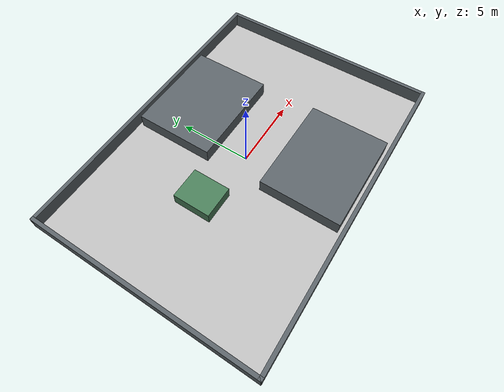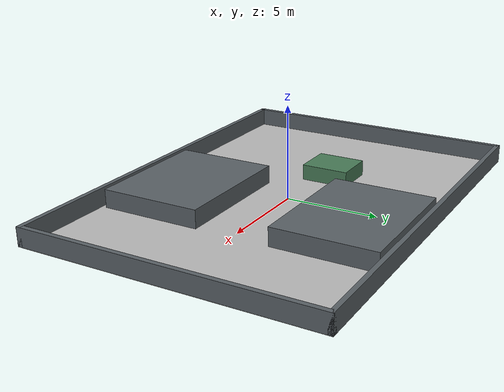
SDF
<?xml version="1.0"?>
<sdf version="1.6">
  <world name="default">
    <gravity>0 0 -9.8</gravity>
    <physics name="default_physics" type="ode">
      <max_step_size>0.002</max_step_size>
      <real_time_factor>1</real_time_factor>
      <real_time_update_rate>500</real_time_update_rate>
    </physics>
    <include><uri>model://sun</uri></include>
    <model name="ground_plane">
      <static>true</static>
      <link name="link">
        <collision name="collision">
          <geometry><box><size>22.000 16.000 0.02</size></box></geometry>
        </collision>
        <visual name="visual">
          <geometry><box><size>22.000 16.000 0.02</size></box></geometry>
          <material>
            <ambient>0.72 0.72 0.72 1</ambient>
            <diffuse>0.72 0.72 0.72 1</diffuse>
          </material>
        </visual>
      </link>
    </model>

    <model name="wall_north">
      <static>true</static>
      <pose>0.000 7.875 0.500 0 0 0</pose>
      <link name="link">
        <collision name="collision">
          <geometry><box><size>22.000 0.250 1.000</size></box></geometry>
        </collision>
        <visual name="visual">
          <geometry><box><size>22.000 0.250 1.000</size></box></geometry>
          <material>
            <ambient>0.35 0.38 0.40 1</ambient>
            <diffuse>0.35 0.38 0.40 1</diffuse>
          </material>
        </visual>
      </link>
    </model>

    <model name="wall_south">
      <static>true</static>
      <pose>0.000 -7.875 0.500 0 0 0</pose>
      <link name="link">
        <collision name="collision">
          <geometry><box><size>22.000 0.250 1.000</size></box></geometry>
        </collision>
        <visual name="visual">
          <geometry><box><size>22.000 0.250 1.000</size></box></geometry>
          <material>
            <ambient>0.35 0.38 0.40 1</ambient>
            <diffuse>0.35 0.38 0.40 1</diffuse>
          </material>
        </visual>
      </link>
    </model>

    <model name="wall_west">
      <static>true</static>
      <pose>-10.875 0.000 0.500 0 0 0</pose>
      <link name="link">
        <collision name="collision">
          <geometry><box><size>0.250 16.000 1.000</size></box></geometry>
        </collision>
        <visual name="visual">
          <geometry><box><size>0.250 16.000 1.000</size></box></geometry>
          <material>
            <ambient>0.35 0.38 0.40 1</ambient>
            <diffuse>0.35 0.38 0.40 1</diffuse>
          </material>
        </visual>
      </link>
    </model>

    <model name="wall_east">
      <static>true</static>
      <pose>10.875 0.000 0.500 0 0 0</pose>
      <link name="link">
        <collision name="collision">
          <geometry><box><size>0.250 16.000 1.000</size></box></geometry>
        </collision>
        <visual name="visual">
          <geometry><box><size>0.250 16.000 1.000</size></box></geometry>
          <material>
            <ambient>0.35 0.38 0.40 1</ambient>
            <diffuse>0.35 0.38 0.40 1</diffuse>
          </material>
        </visual>
      </link>
    </model>

    <model name="bottleneck_upper">
      <static>true</static>
      <pose>2.000 4.750 0.500 0 0 0</pose>
      <link name="link">
        <collision name="collision">
          <geometry><box><size>7.000 5.500 1.000</size></box></geometry>
        </collision>
        <visual name="visual">
          <geometry><box><size>7.000 5.500 1.000</size></box></geometry>
          <material>
            <ambient>0.35 0.38 0.40 1</ambient>
            <diffuse>0.35 0.38 0.40 1</diffuse>
          </material>
        </visual>
      </link>
    </model>

    <model name="bottleneck_lower">
      <static>true</static>
      <pose>2.000 -4.750 0.500 0 0 0</pose>
      <link name="link">
        <collision name="collision">
          <geometry><box><size>7.000 5.500 1.000</size></box></geometry>
        </collision>
        <visual name="visual">
          <geometry><box><size>7.000 5.500 1.000</size></box></geometry>
          <material>
            <ambient>0.35 0.38 0.40 1</ambient>
            <diffuse>0.35 0.38 0.40 1</diffuse>
          </material>
        </visual>
      </link>
    </model>

    <model name="bottleneck_entry_island">
      <static>true</static>
      <pose>-4.000 0.650 0.425 0 0 0</pose>
      <link name="link">
        <collision name="collision">
          <geometry><box><size>2.200 2.600 0.850</size></box></geometry>
        </collision>
        <visual name="visual">
          <geometry><box><size>2.200 2.600 0.850</size></box></geometry>
          <material>
            <ambient>0.28 0.48 0.34 1</ambient>
            <diffuse>0.28 0.48 0.34 1</diffuse>
          </material>
        </visual>
      </link>
    </model>
  </world>
</sdf>
